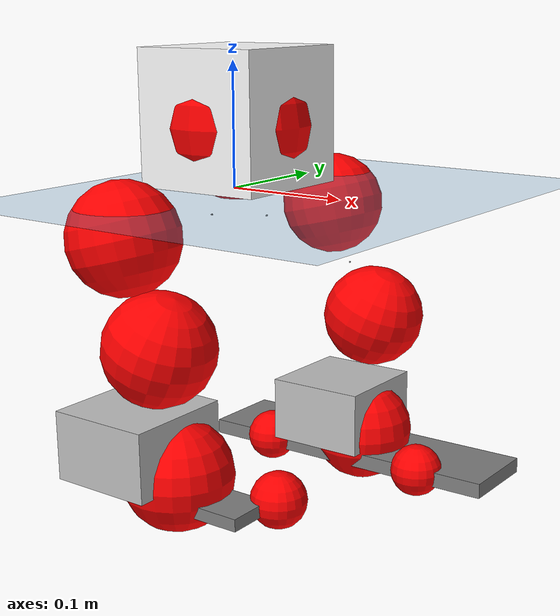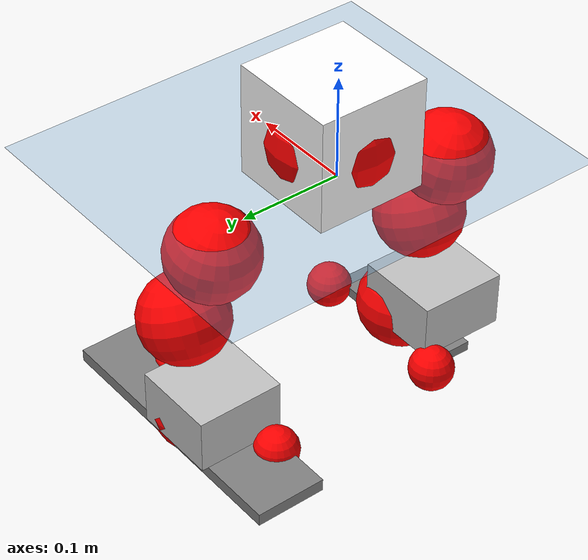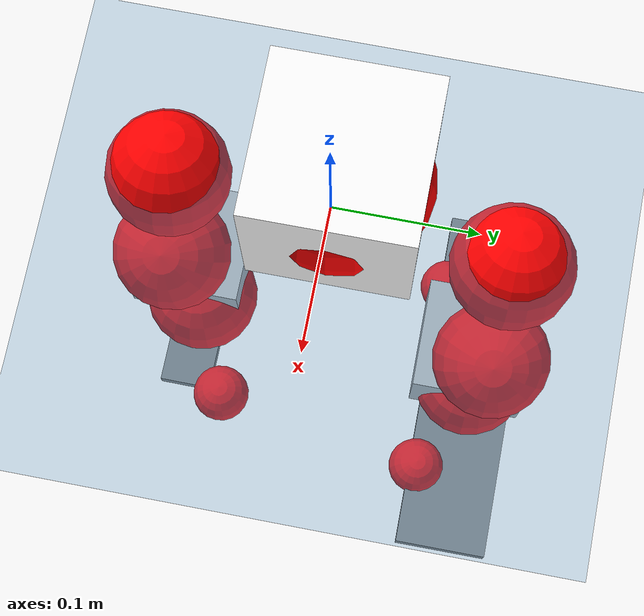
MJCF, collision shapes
<mujoco model="pi_12dof_release_v1">
  <compiler angle="radian" assetdir="assets" balanceinertia="true" inertiafromgeom="false"/>

  <option timestep="0.005" density="1.2" viscosity="2e-05"/>

  <size nkey="1"/>

  <visual>
    <quality shadowsize="8192"/>
    <map shadowclip="0.5"/>
  </visual>

  <default>
    <default class="/">
      <joint armature="0.01" damping="0.01" frictionloss="0.01"/>
      <geom contype="0" conaffinity="0" group="1" solref="-1000 -80"/>
      <site size="0.01 0.005 0.005" group="5"/>
      <general forcelimited="true" biastype="affine" gainprm="20" biasprm="0 -20 -0.5"/>
      <default class="foot">
        <geom size="0.0845 0.036 0.005" type="box" condim="6" group="4" priority="1" friction="0.9 0.2 0.2" solimp="0.015 1 0.005"/>
      </default>
      <default class="reward_collision_sphere">
        <geom group="5" rgba="1 0 0 1"/>
      </default>
    </default>
  </default>

  <asset>
    <texture type="skybox" colorspace="auto" name="//unnamed_texture_0" builtin="gradient" rgb1="0.95 0.95 0.95" rgb2="0.95 0.95 0.95" width="100" height="600"/>
    <texture type="2d" colorspace="auto" name="texplane" builtin="checker" rgb1="0.345 0.575 0.748" rgb2="0.345 0.575 0.748" markrgb="1 1 1" width="512" height="512"/>
    <material name="MatPlane" class="/" texture="texplane" texuniform="true" texrepeat="2 2" specular="0.9"/>
    <mesh name="baselink_1" class="/" file="baselink_1.STL"/>
    <mesh name="r_hip_pitch_link" class="/" file="r_hip_pitch_link.STL"/>
    <mesh name="r_hip_roll_link" class="/" file="r_hip_roll_link.STL"/>
    <mesh name="r_thigh_link" class="/" file="r_thigh_link.STL"/>
    <mesh name="r_calf_link" class="/" file="r_calf_link.STL"/>
    <mesh name="r_ankle_pitch_link" class="/" file="r_ankle_pitch_link.STL"/>
    <mesh name="r_ankle_roll_link" class="/" file="r_ankle_roll_link.STL"/>
    <mesh name="l_hip_pitch_link" class="/" file="l_hip_pitch_link.STL"/>
    <mesh name="l_hip_roll_link" class="/" file="l_hip_roll_link.STL"/>
    <mesh name="l_thigh_link" class="/" file="l_thigh_link.STL"/>
    <mesh name="l_calf_link" class="/" file="l_calf_link.STL"/>
    <mesh name="l_ankle_pitch_link" class="/" file="l_ankle_pitch_link.STL"/>
    <mesh name="l_ankle_roll_link" class="/" file="l_ankle_roll_link.STL"/>
  </asset>

  <worldbody>
    <geom name="floor" class="/" size="100 100 0.125" type="plane" group="0" material="MatPlane"/>
    <light name="toplight_shadow" class="/" pos="0 0 5" dir="0.0990148 0.0990148 -0.990148" type="directional" ambient="0.04 0.04 0.04" diffuse="0.55 0.55 0.55" specular="0.12 0.12 0.12"/>
    <light name="toplight_fill" class="/" pos="0 0 5" dir="0.0990148 0.0990148 -0.990148" type="directional" castshadow="false" ambient="0.04 0.04 0.04" diffuse="0.3 0.3 0.3" specular="0.08 0.08 0.08"/>
    <body name="trunk" pos="-0.00138108 0.00767565 0.00322703" quat="0.999993 0.0013916 -0.0035139 0.000824843">
      <inertial pos="0.00903725 0.0124819 0.0186942" quat="0.715628 0.0214296 0.00659222 0.698122" mass="2.85002" diaginertia="0.0229414 0.074175 0.000542058"/>
      <joint name="//unnamed_joint_0" type="free"/>
      <geom name="//unnamed_geom_1" class="/" type="mesh" density="0" rgba="1 1 1 1" mesh="baselink_1"/>
      <geom name="//unnamed_geom_2" class="/" size="0.0543886 0.0543886 0.0543886" pos="0 0 0.0530641" type="box" rgba="1 1 1 1"/>
      <geom name="//unnamed_geom_3" class="reward_collision_sphere" size="0.0598275" pos="0 0 0.0464311"/>
      <site name="imu" class="/" pos="0.000333532 0.00327508 0.00334377" size="0.0108777"/>
      <camera name="track" class="/" pos="0 -2.96142 0" quat="0.707107 0.707107 0 0" mode="trackcom"/>
      <camera name="ego_camera" class="/" pos="0.0839481 0 0.119394" quat="-0.5 -0.5 0.5 0.5"/>
      <body name="r_hip_pitch_link" pos="-0.00207192 -0.032302 -0.0213505" quat="0.992181 -3.1077e-05 -0.124811 0.0002082">
        <inertial pos="0.00313643 -0.0720194 0.00225057" quat="-0.0776321 0.728742 -0.0374922 0.67934" mass="0.472833" diaginertia="0.000185297 0.000726862 1.0323e-05"/>
        <joint name="r_hip_pitch_joint" class="/" pos="0 0 0" axis="-0.00331212 -0.999994 -0.000802805" range="-1.89168 1.12133" armature="0.0106638" damping="0" frictionloss="0.00449678"/>
        <geom name="//unnamed_geom_4" class="/" type="mesh" density="0" rgba="0.75294 0.75294 0.75294 1" mesh="r_hip_pitch_link"/>
        <geom name="//unnamed_geom_5" class="/" size="0.000543886 0.000543886 0.000543886" type="box" rgba="0.75294 0.75294 0.75294 1"/>
        <body name="r_hip_roll_link" pos="-0.00944824 -0.0900216 -0.00264452" quat="0.999979 0.00267385 0.000389332 -0.00594476">
          <inertial pos="-0.00181139 -0.0127598 -0.0392697" quat="0.691954 -0.0891407 -0.0897009 0.710779" mass="0.471146" diaginertia="0.000678224 0.00170142 1.68042e-05"/>
          <joint name="r_hip_roll_joint" class="/" pos="0 0 0" axis="-0.999587 0.0214381 0.0191287" stiffness="0.00676228" range="-0.112707 0.503624" armature="0.00538372" damping="0" frictionloss="0.0108891"/>
          <geom name="//unnamed_geom_6" class="/" type="mesh" density="0" rgba="0.75294 0.75294 0.75294 1" mesh="r_hip_roll_link"/>
          <geom name="//unnamed_geom_7" class="/" size="0.000543886 0.000543886 0.000543886" type="box" rgba="0.75294 0.75294 0.75294 1"/>
          <geom name="//unnamed_geom_8" class="reward_collision_sphere" size="0.0435109"/>
          <body name="r_thigh_link" pos="-0.00255823 -0.00147702 -0.0436162" quat="1 0.000100349 0.000339718 -7.67176e-05">
            <inertial pos="0.0108639 0.00890312 -0.0220626" quat="0.746624 0.665113 0.0132491 -0.00164301" mass="0.150888" diaginertia="0.000241144 0.000628228 8.11235e-06"/>
            <joint name="r_thigh_joint" class="/" pos="0 0 0" axis="0.0243419 0.0452761 -0.998678" stiffness="0.0592808" range="-0.0530277 0.844112" armature="0.00503055" damping="0.0732526" frictionloss="0.00424746"/>
            <geom name="//unnamed_geom_9" class="/" type="mesh" density="0" rgba="0.75294 0.75294 0.75294 1" mesh="r_thigh_link"/>
            <geom name="//unnamed_geom_10" class="/" size="0.000543886 0.000543886 0.000543886" type="box" rgba="0.75294 0.75294 0.75294 1"/>
            <body name="r_calf_link" pos="0.0128935 0.00161188 -0.0404979" quat="0.947559 2.43242e-05 0.319578 0.000953114">
              <inertial pos="0.000320233 -0.00602473 -0.0412949" quat="0.998647 -0.0165167 -0.00389026 -0.0491469" mass="1.12005" diaginertia="0.00693267 0.0249152 2.17154e-05"/>
              <joint name="r_calf_joint" class="/" pos="0 0 0" axis="-0.0249103 -0.997758 0.0621136" stiffness="0.00890861" range="-1.5306 0.672756" armature="0.0104169" damping="0.0247035" frictionloss="0.00471402"/>
              <geom name="//unnamed_geom_11" class="/" type="mesh" density="0" rgba="0.75294 0.75294 0.75294 1" mesh="r_calf_link"/>
              <geom name="//unnamed_geom_12" class="/" size="0.000543886 0.000543886 0.000543886" type="box" rgba="0.75294 0.75294 0.75294 1"/>
              <geom name="//unnamed_geom_13" class="reward_collision_sphere" size="0.0435109"/>
              <body name="r_ankle_pitch_link" pos="0.00437775 0.0030038 -0.0821229" quat="0.980118 5.17499e-05 -0.198417 -0.000625137">
                <inertial pos="-0.000429314 0.0125109 -0.0115533" quat="0.013613 0.715175 0.00796817 0.698768" mass="0.215311" diaginertia="0.000584995 0.00156177 1.52265e-05"/>
                <joint name="r_ankle_pitch_joint" class="/" pos="0 0 0" axis="0.0077399 -0.999948 -0.00664511" stiffness="0.00592145" range="-1.14234 0.732233" armature="0.00586094" damping="0.00103248" frictionloss="0.0049669"/>
                <geom name="//unnamed_geom_14" class="/" type="mesh" density="0" rgba="0.75294 0.75294 0.75294 1" mesh="r_ankle_pitch_link"/>
                <geom name="//unnamed_geom_15" class="/" size="0.0424231 0.0435109 0.0271943" type="box" rgba="0.75294 0.75294 0.75294 1"/>
                <body name="r_ankle_roll_link" pos="0.0858557 0.00990754 -0.010907" quat="1 -0.000491929 0.000585329 -0.000589836">
                  <inertial pos="-0.0195915 -0.0072133 -0.00911303" quat="0.557231 0.444044 0.41621 0.564878" mass="0.556894" diaginertia="0.00175509 0.00552423 3.31044e-05"/>
                  <joint name="r_ankle_roll_joint" class="/" pos="0 0 0" axis="-0.997544 -0.0668507 -0.0208899" range="-0.413084 -0.0368619" armature="0.0107457" damping="0" frictionloss="0.00908271"/>
                  <geom name="//unnamed_geom_16" class="/" type="mesh" density="0" rgba="0.75294 0.75294 0.75294 1" mesh="r_ankle_roll_link"/>
                  <geom name="//unnamed_geom_17" class="/" type="mesh" rgba="0.75294 0.75294 0.75294 1" mesh="r_ankle_roll_link"/>
                  <geom name="right_foot" class="foot" size="0.0718362 0.0196027 0.00487555" pos="-0.0570847 0 -0.0291852"/>
                  <geom name="//unnamed_geom_19" class="reward_collision_sphere" size="0.0435109" pos="-0.0559654 0 -0.013266"/>
                  <geom name="//unnamed_geom_20" class="reward_collision_sphere" size="0.0217555" pos="0.0167896 0.0296142 -0.026532"/>
                  <geom name="//unnamed_geom_21" class="reward_collision_sphere" size="0.0217555" pos="-0.134317 0.0296142 -0.026532"/>
                  <site name="right_foot" class="foot" pos="-0.0570847 0 -0.0291852" size="0.0108777"/>
                </body>
              </body>
            </body>
          </body>
        </body>
      </body>
      <body name="l_hip_pitch_link" pos="0.00511655 0.0289554 -0.0307142" quat="0.992248 -9.11653e-05 -0.124273 -0.000368274">
        <inertial pos="-0.000597278 0.0824268 -0.00712578" quat="-0.04823 0.708464 0.0287318 0.703511" mass="0.616137" diaginertia="0.000242232 0.00084331 1.25275e-05"/>
        <joint name="l_hip_pitch_joint" class="/" pos="0 0 0" axis="0.0177526 0.999831 0.00473747" range="-1.2485 1.54365" armature="0.0110818" damping="0.0183265" frictionloss="0.0100863"/>
        <geom name="//unnamed_geom_22" class="/" type="mesh" density="0" rgba="0.75294 0.75294 0.75294 1" mesh="l_hip_pitch_link"/>
        <geom name="//unnamed_geom_23" class="/" size="0.000543886 0.000543886 0.000543886" type="box" rgba="0.75294 0.75294 0.75294 1"/>
        <body name="l_hip_roll_link" pos="0.00437239 0.0896512 -0.00274025" quat="0.999983 -0.00349493 0.00467256 0.00030885">
          <inertial pos="-0.000615106 -0.0134225 -0.0440253" quat="0.707365 -0.0455559 -0.108857 0.696928" mass="0.574815" diaginertia="0.00062694 0.0018055 1.41846e-05"/>
          <joint name="l_hip_roll_joint" class="/" pos="0 0 0" axis="-0.999187 0.0206301 -0.0346234" range="-0.521607 0.0443393" armature="0.00391068" damping="0.00661759" frictionloss="0.0143159"/>
          <geom name="//unnamed_geom_24" class="/" type="mesh" density="0" rgba="0.75294 0.75294 0.75294 1" mesh="l_hip_roll_link"/>
          <geom name="//unnamed_geom_25" class="/" size="0.000543886 0.000543886 0.000543886" type="box" rgba="0.75294 0.75294 0.75294 1"/>
          <geom name="//unnamed_geom_26" class="reward_collision_sphere" size="0.0435109"/>
          <body name="l_thigh_link" pos="0.00494543 0.00112052 -0.054259" quat="0.999995 0.00187761 0.00143017 0.00190933">
            <inertial pos="0.00167986 -0.0115454 -0.0320233" quat="0.675633 0.737234 0.00148419 -0.00206286" mass="0.148743" diaginertia="0.000239008 0.000735474 8.17261e-06"/>
            <joint name="l_thigh_joint" class="/" pos="0 0 0" axis="5.02127e-05 -1.08975e-05 -1" range="-0.672138 0.246201" armature="0.0145748" damping="0.0607596" frictionloss="0.0089891"/>
            <geom name="//unnamed_geom_27" class="/" type="mesh" density="0" rgba="0.75294 0.75294 0.75294 1" mesh="l_thigh_link"/>
            <geom name="//unnamed_geom_28" class="/" size="0.000543886 0.000543886 0.000543886" type="box" rgba="0.75294 0.75294 0.75294 1"/>
            <body name="l_calf_link" pos="0.012659 0.00162794 -0.0494928" quat="0.949784 -0.000514533 0.312905 -0.000479905">
              <inertial pos="0.00109658 0.00887638 -0.0459634" quat="0.999946 0.00948912 0.00291917 0.00317214" mass="1.1119" diaginertia="0.00661574 0.0255997 1.98648e-05"/>
              <joint name="l_calf_joint" class="/" pos="0 0 0" axis="-0.0316313 0.999499 -0.00142438" stiffness="0.0665903" range="-0.85325 1.72623" armature="0.0133456" damping="0.0173071" frictionloss="0.0093251"/>
              <geom name="//unnamed_geom_29" class="/" type="mesh" density="0" rgba="0.75294 0.75294 0.75294 1" mesh="l_calf_link"/>
              <geom name="//unnamed_geom_30" class="/" size="0.000543886 0.000543886 0.000543886" type="box" rgba="0.75294 0.75294 0.75294 1"/>
              <geom name="//unnamed_geom_31" class="reward_collision_sphere" size="0.0435109"/>
              <body name="l_ankle_pitch_link" pos="0.00813101 -0.00908002 -0.0893086" quat="0.979829 -0.00179893 -0.199831 -0.000585031">
                <inertial pos="0.00647584 0.00760236 -0.000452492" quat="0.00182235 0.707518 0.00409054 0.706681" mass="0.211988" diaginertia="0.000527815 0.00159465 1.63881e-05"/>
                <joint name="l_ankle_pitch_joint" class="/" pos="0 0 0" axis="-0.00132042 0.999999 0.0003029" range="-0.4947 1.28439" armature="0.0163135" damping="0" frictionloss="0.0147247"/>
                <geom name="//unnamed_geom_32" class="/" type="mesh" density="0" rgba="0.75294 0.75294 0.75294 1" mesh="l_ankle_pitch_link"/>
                <geom name="//unnamed_geom_33" class="/" size="0.0424231 0.0435109 0.0271943" type="box" rgba="0.75294 0.75294 0.75294 1"/>
                <body name="l_ankle_roll_link" pos="0.0777172 0.00125524 -0.0053911" quat="1 2.34143e-05 7.48005e-05 4.43927e-06">
                  <inertial pos="-0.0201938 -0.000502289 -0.0128674" quat="0.558469 0.431983 0.437015 0.557244" mass="0.610246" diaginertia="0.00193699 0.00691014 3.67645e-05"/>
                  <joint name="l_ankle_roll_joint" class="/" pos="0 0 0" axis="-1 -0.000314431 -0.000140864" stiffness="0.000902599" range="-0.40407 0.184064" armature="0.0113198" damping="0.0700247" frictionloss="0.0130418"/>
                  <geom name="//unnamed_geom_34" class="/" type="mesh" density="0" rgba="0.75294 0.75294 0.75294 1" mesh="l_ankle_roll_link"/>
                  <geom name="//unnamed_geom_35" class="/" type="mesh" rgba="0.75294 0.75294 0.75294 1" mesh="l_ankle_roll_link"/>
                  <geom name="left_foot" class="foot" size="0.136172 0.0352092 0.0062752" pos="-0.0570847 0 -0.0291852"/>
                  <geom name="//unnamed_geom_37" class="reward_collision_sphere" size="0.0435109" pos="-0.0559654 0 -0.013266"/>
                  <geom name="//unnamed_geom_38" class="reward_collision_sphere" size="0.0217555" pos="0.0167896 -0.0296142 -0.026532"/>
                  <geom name="//unnamed_geom_39" class="reward_collision_sphere" size="0.0217555" pos="-0.134317 -0.0296142 -0.026532"/>
                  <site name="left_foot" class="foot" pos="-0.0570847 0 -0.0291852" size="0.0108777"/>
                </body>
              </body>
            </body>
          </body>
        </body>
      </body>
    </body>
  </worldbody>

  <contact>
    <pair class="/" geom1="floor" geom2="right_foot" name="//unnamed_contact_1"/>
    <pair class="/" geom1="floor" geom2="left_foot" name="//unnamed_contact_0"/>
  </contact>

  <actuator>
    <general name="r_hip_pitch_joint" class="/" joint="r_hip_pitch_joint" forcerange="-26.7524 26.7524" gainprm="24.6171" biasprm="0 -24.6171 -0.504198"/>
    <general name="r_hip_roll_joint" class="/" joint="r_hip_roll_joint" forcerange="-11.7115 11.7115" gainprm="24.6171" biasprm="0 -24.6171 -0.504198"/>
    <general name="r_thigh_joint" class="/" joint="r_thigh_joint" forcerange="-23.9047 23.9047" gainprm="24.6171" biasprm="0 -24.6171 -0.504198"/>
    <general name="r_calf_joint" class="/" joint="r_calf_joint" forcerange="-23.1314 23.1314" gainprm="24.6171" biasprm="0 -24.6171 -0.504198"/>
    <general name="r_ankle_pitch_joint" class="/" joint="r_ankle_pitch_joint" forcerange="-22.1961 22.1961" gainprm="24.6171" biasprm="0 -24.6171 -0.504198"/>
    <general name="r_ankle_roll_joint" class="/" joint="r_ankle_roll_joint" forcerange="-15.1526 15.1526" gainprm="24.6171" biasprm="0 -24.6171 -0.504198"/>
    <general name="l_hip_pitch_joint" class="/" joint="l_hip_pitch_joint" forcerange="-18.3808 18.3808" gainprm="24.6171" biasprm="0 -24.6171 -0.504198"/>
    <general name="l_hip_roll_joint" class="/" joint="l_hip_roll_joint" forcerange="-21.6417 21.6417" gainprm="24.6171" biasprm="0 -24.6171 -0.504198"/>
    <general name="l_thigh_joint" class="/" joint="l_thigh_joint" forcerange="-23.5455 23.5455" gainprm="24.6171" biasprm="0 -24.6171 -0.504198"/>
    <general name="l_calf_joint" class="/" joint="l_calf_joint" forcerange="-27.7944 27.7944" gainprm="24.6171" biasprm="0 -24.6171 -0.504198"/>
    <general name="l_ankle_pitch_joint" class="/" joint="l_ankle_pitch_joint" forcerange="-21.9433 21.9433" gainprm="24.6171" biasprm="0 -24.6171 -0.504198"/>
    <general name="l_ankle_roll_joint" class="/" joint="l_ankle_roll_joint" forcerange="-30.1464 30.1464" gainprm="24.6171" biasprm="0 -24.6171 -0.504198"/>
  </actuator>

  <sensor>
    <gyro site="imu" name="imu_angular_velocity"/>
    <velocimeter site="imu" name="imu_linear_velocity"/>
    <framelinvel objtype="site" objname="left_foot" name="left_foot_global_linear_velocity"/>
    <framelinvel objtype="site" objname="right_foot" name="right_foot_global_linear_velocity"/>
  </sensor>

  <keyframe>
    <key name="home" qpos="0 0 0.291 1 0 0 0 0.4 0 0 -0.8 0.4 0 -0.4 0 0 0.8 -0.4 0"/>
  </keyframe>
</mujoco>
